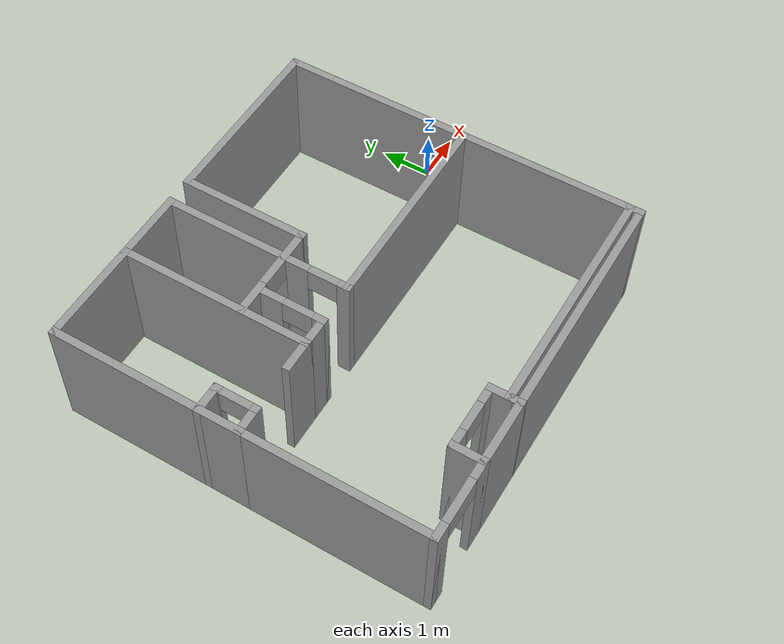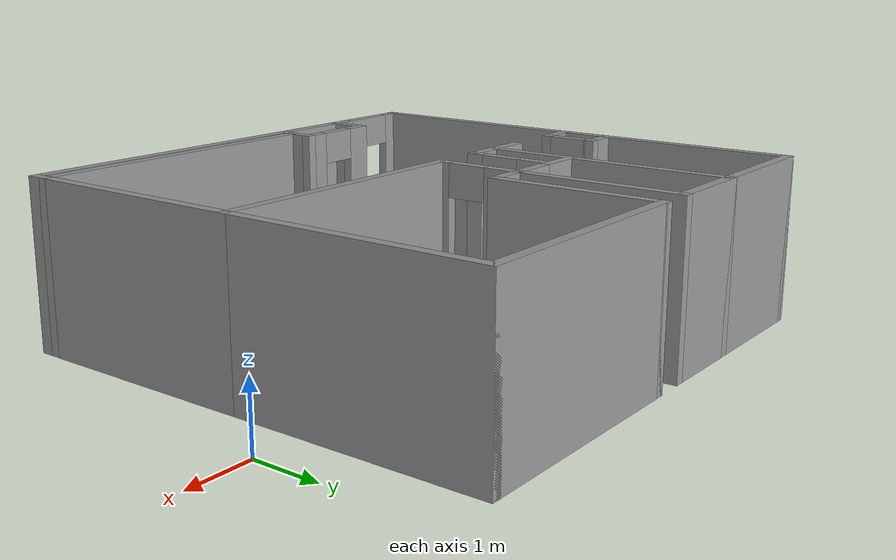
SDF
<?xml version='1.0'?>
<sdf version='1.6'>
  <model name='apartment'>
    <pose frame=''>-4.56462 -1.0605 0 0 -0 0</pose>
    <link name='Wall_11'>
      <pose frame=''>-3.27938 0.3285 0 0 -0 1.5708</pose>
      <visual name='Wall_11_Visual_0'>
        <pose frame=''>-0.389285 0 1.25 0 -0 0</pose>
        <geometry>
          <box>
            <size>0.161429 0.15 2.5</size>
          </box>
        </geometry>
        <material>
          <script>
            <uri>file://media/materials/scripts/gazebo.material</uri>
            <name>Gazebo/Grey</name>
          </script>
          <ambient>1 1 1 1</ambient>
        </material>
        <meta>
          <layer>0</layer>
        </meta>
      </visual>
      <collision name='Wall_11_Collision_0'>
        <geometry>
          <box>
            <size>0.161429 0.15 2.5</size>
          </box>
        </geometry>
        <pose frame=''>-0.389285 0 1.25 0 -0 0</pose>
      </collision>
      <visual name='Wall_11_Visual_1'>
        <pose frame=''>0.380715 0 1.25 0 -0 0</pose>
        <geometry>
          <box>
            <size>0.178571 0.15 2.5</size>
          </box>
        </geometry>
        <material>
          <script>
            <uri>file://media/materials/scripts/gazebo.material</uri>
            <name>Gazebo/Grey</name>
          </script>
          <ambient>1 1 1 1</ambient>
        </material>
        <meta>
          <layer>0</layer>
        </meta>
      </visual>
      <collision name='Wall_11_Collision_1'>
        <geometry>
          <box>
            <size>0.178571 0.15 2.5</size>
          </box>
        </geometry>
        <pose frame=''>0.380715 0 1.25 0 -0 0</pose>
      </collision>
      <visual name='Wall_11_Visual_2'>
        <pose frame=''>-0.008571 0 2.25 0 -0 0</pose>
        <geometry>
          <box>
            <size>0.6 0.15 0.5</size>
          </box>
        </geometry>
        <material>
          <script>
            <uri>file://media/materials/scripts/gazebo.material</uri>
            <name>Gazebo/Grey</name>
          </script>
          <ambient>1 1 1 1</ambient>
        </material>
        <meta>
          <layer>0</layer>
        </meta>
      </visual>
      <collision name='Wall_11_Collision_2'>
        <geometry>
          <box>
            <size>0.6 0.15 0.5</size>
          </box>
        </geometry>
        <pose frame=''>-0.008571 0 2.25 0 -0 0</pose>
      </collision>
    </link>
    <link name='Wall_13'>
      <collision name='Wall_13_Collision'>
        <geometry>
          <box>
            <size>0.635 0.15 2.5</size>
          </box>
        </geometry>
        <pose frame=''>0 0 1.25 0 -0 0</pose>
      </collision>
      <visual name='Wall_13_Visual'>
        <pose frame=''>0 0 1.25 0 -0 0</pose>
        <geometry>
          <box>
            <size>0.635 0.15 2.5</size>
          </box>
        </geometry>
        <material>
          <script>
            <uri>file://media/materials/scripts/gazebo.material</uri>
            <name>Gazebo/Grey</name>
          </script>
          <ambient>1 1 1 1</ambient>
        </material>
        <meta>
          <layer>0</layer>
        </meta>
      </visual>
      <pose frame=''>-3.52188 0.7235 0 0 -0 3.14159</pose>
    </link>
    <link name='Wall_16'>
      <collision name='Wall_16_Collision'>
        <geometry>
          <box>
            <size>3.124 0.15 2.5</size>
          </box>
        </geometry>
        <pose frame=''>0 0 1.25 0 -0 0</pose>
      </collision>
      <visual name='Wall_16_Visual'>
        <pose frame=''>0 0 1.25 0 -0 0</pose>
        <geometry>
          <box>
            <size>3.124 0.15 2.5</size>
          </box>
        </geometry>
        <material>
          <script>
            <uri>file://media/materials/scripts/gazebo.material</uri>
            <name>Gazebo/Grey</name>
          </script>
          <ambient>1 1 1 1</ambient>
        </material>
        <meta>
          <layer>0</layer>
        </meta>
      </visual>
      <pose frame=''>-3.76438 2.2105 0 0 -0 1.5708</pose>
    </link>
    <link name='Wall_18'>
      <collision name='Wall_18_Collision'>
        <geometry>
          <box>
            <size>2.159 0.15 2.5</size>
          </box>
        </geometry>
        <pose frame=''>0 0 1.25 0 -0 0</pose>
      </collision>
      <visual name='Wall_18_Visual'>
        <pose frame=''>0 0 1.25 0 -0 0</pose>
        <geometry>
          <box>
            <size>2.159 0.15 2.5</size>
          </box>
        </geometry>
        <material>
          <script>
            <uri>file://media/materials/scripts/gazebo.material</uri>
            <name>Gazebo/Grey</name>
          </script>
          <ambient>1 1 1 1</ambient>
        </material>
        <meta>
          <layer>0</layer>
        </meta>
      </visual>
      <pose frame=''>-2.75988 3.6975 0 0 -0 0</pose>
    </link>
    <link name='Wall_20'>
      <collision name='Wall_20_Collision'>
        <geometry>
          <box>
            <size>3.914 0.15 2.5</size>
          </box>
        </geometry>
        <pose frame=''>0 0 1.25 0 -0 0</pose>
      </collision>
      <visual name='Wall_20_Visual'>
        <pose frame=''>0 0 1.25 0 -0 0</pose>
        <geometry>
          <box>
            <size>3.914 0.15 2.5</size>
          </box>
        </geometry>
        <material>
          <script>
            <uri>file://media/materials/scripts/gazebo.material</uri>
            <name>Gazebo/Grey</name>
          </script>
          <ambient>1 1 1 1</ambient>
        </material>
        <meta>
          <layer>0</layer>
        </meta>
      </visual>
      <pose frame=''>-1.75538 1.8155 0 0 0 -1.5708</pose>
    </link>
    <link name='Wall_25'>
      <collision name='Wall_25_Collision'>
        <geometry>
          <box>
            <size>0.711 0.15 2.5</size>
          </box>
        </geometry>
        <pose frame=''>0 0 1.25 0 -0 0</pose>
      </collision>
      <visual name='Wall_25_Visual'>
        <pose frame=''>0 0 1.25 0 -0 0</pose>
        <geometry>
          <box>
            <size>0.711 0.15 2.5</size>
          </box>
        </geometry>
        <material>
          <script>
            <uri>file://media/materials/scripts/gazebo.material</uri>
            <name>Gazebo/Grey</name>
          </script>
          <ambient>1 1 1 1</ambient>
        </material>
        <meta>
          <layer>0</layer>
        </meta>
      </visual>
      <pose frame=''>-2.03588 -0.0665 0 0 -0 3.14159</pose>
    </link>
    <link name='Wall_27'>
      <collision name='Wall_27_Collision'>
        <geometry>
          <box>
            <size>0.686 0.15 2.5</size>
          </box>
        </geometry>
        <pose frame=''>0 0 1.25 0 -0 0</pose>
      </collision>
      <visual name='Wall_27_Visual'>
        <pose frame=''>0 0 1.25 0 -0 0</pose>
        <geometry>
          <box>
            <size>0.686 0.15 2.5</size>
          </box>
        </geometry>
        <material>
          <script>
            <uri>file://media/materials/scripts/gazebo.material</uri>
            <name>Gazebo/Grey</name>
          </script>
          <ambient>1 1 1 1</ambient>
        </material>
        <meta>
          <layer>0</layer>
        </meta>
      </visual>
      <pose frame=''>-1.48738 -0.0665 0 0 -0 0</pose>
    </link>
    <link name='Wall_29'>
      <pose frame=''>-1.21938 0.519 0 0 -0 1.5708</pose>
      <visual name='Wall_29_Visual_0'>
        <pose frame=''>-0.530207 0 1.25 0 -0 0</pose>
        <geometry>
          <box>
            <size>0.260586 0.15 2.5</size>
          </box>
        </geometry>
        <material>
          <script>
            <uri>file://media/materials/scripts/gazebo.material</uri>
            <name>Gazebo/Grey</name>
          </script>
          <ambient>1 1 1 1</ambient>
        </material>
        <meta>
          <layer>0</layer>
        </meta>
      </visual>
      <collision name='Wall_29_Collision_0'>
        <geometry>
          <box>
            <size>0.260586 0.15 2.5</size>
          </box>
        </geometry>
        <pose frame=''>-0.530207 0 1.25 0 -0 0</pose>
      </collision>
      <visual name='Wall_29_Visual_1'>
        <pose frame=''>0.430293 0 1.25 0 -0 0</pose>
        <geometry>
          <box>
            <size>0.460414 0.15 2.5</size>
          </box>
        </geometry>
        <material>
          <script>
            <uri>file://media/materials/scripts/gazebo.material</uri>
            <name>Gazebo/Grey</name>
          </script>
          <ambient>1 1 1 1</ambient>
        </material>
        <meta>
          <layer>0</layer>
        </meta>
      </visual>
      <collision name='Wall_29_Collision_1'>
        <geometry>
          <box>
            <size>0.460414 0.15 2.5</size>
          </box>
        </geometry>
        <pose frame=''>0.430293 0 1.25 0 -0 0</pose>
      </collision>
      <visual name='Wall_29_Visual_2'>
        <pose frame=''>-0.099914 0 2.25 0 -0 0</pose>
        <geometry>
          <box>
            <size>0.6 0.15 0.5</size>
          </box>
        </geometry>
        <material>
          <script>
            <uri>file://media/materials/scripts/gazebo.material</uri>
            <name>Gazebo/Grey</name>
          </script>
          <ambient>1 1 1 1</ambient>
        </material>
        <meta>
          <layer>0</layer>
        </meta>
      </visual>
      <collision name='Wall_29_Collision_2'>
        <geometry>
          <box>
            <size>0.6 0.15 0.5</size>
          </box>
        </geometry>
        <pose frame=''>-0.099914 0 2.25 0 -0 0</pose>
      </collision>
    </link>
    <link name='Wall_33'>
      <collision name='Wall_33_Collision'>
        <geometry>
          <box>
            <size>0.94 0.15 2.5</size>
          </box>
        </geometry>
        <pose frame=''>0 0 1.25 0 -0 0</pose>
      </collision>
      <visual name='Wall_33_Visual'>
        <pose frame=''>0 0 1.25 0 -0 0</pose>
        <geometry>
          <box>
            <size>0.94 0.15 2.5</size>
          </box>
        </geometry>
        <material>
          <script>
            <uri>file://media/materials/scripts/gazebo.material</uri>
            <name>Gazebo/Grey</name>
          </script>
          <ambient>1 1 1 1</ambient>
        </material>
        <meta>
          <layer>0</layer>
        </meta>
      </visual>
      <pose frame=''>-3.76438 0.3285 0 0 0 -1.5708</pose>
    </link>
    <link name='Wall_35'>
      <collision name='Wall_35_Collision'>
        <geometry>
          <box>
            <size>1.5 0.15 2.5</size>
          </box>
        </geometry>
        <pose frame=''>0 0 1.25 0 -0 0</pose>
      </collision>
      <visual name='Wall_35_Visual'>
        <pose frame=''>0 0 1.25 0 -0 0</pose>
        <geometry>
          <box>
            <size>1.5 0.15 2.5</size>
          </box>
        </geometry>
        <material>
          <script>
            <uri>file://media/materials/scripts/gazebo.material</uri>
            <name>Gazebo/Grey</name>
          </script>
          <ambient>1 1 1 1</ambient>
        </material>
        <meta>
          <layer>0</layer>
        </meta>
      </visual>
      <pose frame=''>-1.08038 3.6975 0 0 -0 0</pose>
    </link>
    <link name='Wall_37'>
      <collision name='Wall_37_Collision'>
        <geometry>
          <box>
            <size>2.603 0.15 2.5</size>
          </box>
        </geometry>
        <pose frame=''>0 0 1.25 0 -0 0</pose>
      </collision>
      <visual name='Wall_37_Visual'>
        <pose frame=''>0 0 1.25 0 -0 0</pose>
        <geometry>
          <box>
            <size>2.603 0.15 2.5</size>
          </box>
        </geometry>
        <material>
          <script>
            <uri>file://media/materials/scripts/gazebo.material</uri>
            <name>Gazebo/Grey</name>
          </script>
          <ambient>1 1 1 1</ambient>
        </material>
        <meta>
          <layer>0</layer>
        </meta>
      </visual>
      <pose frame=''>-0.405382 2.471 0 0 0 -1.5708</pose>
    </link>
    <link name='Wall_39'>
      <pose frame=''>-1.08038 1.2445 0 0 -0 3.14159</pose>
      <visual name='Wall_39_Visual_0'>
        <pose frame=''>-0.678105 0 1.25 0 -0 0</pose>
        <geometry>
          <box>
            <size>0.143791 0.15 2.5</size>
          </box>
        </geometry>
        <material>
          <script>
            <uri>file://media/materials/scripts/gazebo.material</uri>
            <name>Gazebo/Grey</name>
          </script>
          <ambient>1 1 1 1</ambient>
        </material>
        <meta>
          <layer>0</layer>
        </meta>
      </visual>
      <collision name='Wall_39_Collision_0'>
        <geometry>
          <box>
            <size>0.143791 0.15 2.5</size>
          </box>
        </geometry>
        <pose frame=''>-0.678105 0 1.25 0 -0 0</pose>
      </collision>
      <visual name='Wall_39_Visual_1'>
        <pose frame=''>0.371895 0 1.25 0 -0 0</pose>
        <geometry>
          <box>
            <size>0.756209 0.15 2.5</size>
          </box>
        </geometry>
        <material>
          <script>
            <uri>file://media/materials/scripts/gazebo.material</uri>
            <name>Gazebo/Grey</name>
          </script>
          <ambient>1 1 1 1</ambient>
        </material>
        <meta>
          <layer>0</layer>
        </meta>
      </visual>
      <collision name='Wall_39_Collision_1'>
        <geometry>
          <box>
            <size>0.756209 0.15 2.5</size>
          </box>
        </geometry>
        <pose frame=''>0.371895 0 1.25 0 -0 0</pose>
      </collision>
      <visual name='Wall_39_Visual_2'>
        <pose frame=''>-0.306209 0 2.25 0 -0 0</pose>
        <geometry>
          <box>
            <size>0.6 0.15 0.5</size>
          </box>
        </geometry>
        <material>
          <script>
            <uri>file://media/materials/scripts/gazebo.material</uri>
            <name>Gazebo/Grey</name>
          </script>
          <ambient>1 1 1 1</ambient>
        </material>
        <meta>
          <layer>0</layer>
        </meta>
      </visual>
      <collision name='Wall_39_Collision_2'>
        <geometry>
          <box>
            <size>0.6 0.15 0.5</size>
          </box>
        </geometry>
        <pose frame=''>-0.306209 0 2.25 0 -0 0</pose>
      </collision>
    </link>
    <link name='Wall_41'>
      <collision name='Wall_41_Collision'>
        <geometry>
          <box>
            <size>0.711 0.15 2.5</size>
          </box>
        </geometry>
        <pose frame=''>0 0 1.25 0 -0 0</pose>
      </collision>
      <visual name='Wall_41_Visual'>
        <pose frame=''>0 0 1.25 0 -0 0</pose>
        <geometry>
          <box>
            <size>0.711 0.15 2.5</size>
          </box>
        </geometry>
        <material>
          <script>
            <uri>file://media/materials/scripts/gazebo.material</uri>
            <name>Gazebo/Grey</name>
          </script>
          <ambient>1 1 1 1</ambient>
        </material>
        <meta>
          <layer>0</layer>
        </meta>
      </visual>
      <pose frame=''>-0.124883 1.2445 0 0 -0 0</pose>
    </link>
    <link name='Wall_43'>
      <collision name='Wall_43_Collision'>
        <geometry>
          <box>
            <size>2.603 0.15 2.5</size>
          </box>
        </geometry>
        <pose frame=''>0 0 1.25 0 -0 0</pose>
      </collision>
      <visual name='Wall_43_Visual'>
        <pose frame=''>0 0 1.25 0 -0 0</pose>
        <geometry>
          <box>
            <size>2.603 0.15 2.5</size>
          </box>
        </geometry>
        <material>
          <script>
            <uri>file://media/materials/scripts/gazebo.material</uri>
            <name>Gazebo/Grey</name>
          </script>
          <ambient>1 1 1 1</ambient>
        </material>
        <meta>
          <layer>0</layer>
        </meta>
      </visual>
      <pose frame=''>0.155617 2.471 0 0 -0 1.5708</pose>
    </link>
    <link name='Wall_45'>
      <collision name='Wall_45_Collision'>
        <geometry>
          <box>
            <size>3.759 0.15 2.5</size>
          </box>
        </geometry>
        <pose frame=''>0 0 1.25 0 -0 0</pose>
      </collision>
      <visual name='Wall_45_Visual'>
        <pose frame=''>0 0 1.25 0 -0 0</pose>
        <geometry>
          <box>
            <size>3.759 0.15 2.5</size>
          </box>
        </geometry>
        <material>
          <script>
            <uri>file://media/materials/scripts/gazebo.material</uri>
            <name>Gazebo/Grey</name>
          </script>
          <ambient>1 1 1 1</ambient>
        </material>
        <meta>
          <layer>0</layer>
        </meta>
      </visual>
      <pose frame=''>1.96012 3.6975 0 0 -0 0</pose>
    </link>
    <link name='Wall_47'>
      <collision name='Wall_47_Collision'>
        <geometry>
          <box>
            <size>3.914 0.15 2.5</size>
          </box>
        </geometry>
        <pose frame=''>0 0 1.25 0 -0 0</pose>
      </collision>
      <visual name='Wall_47_Visual'>
        <pose frame=''>0 0 1.25 0 -0 0</pose>
        <geometry>
          <box>
            <size>3.914 0.15 2.5</size>
          </box>
        </geometry>
        <material>
          <script>
            <uri>file://media/materials/scripts/gazebo.material</uri>
            <name>Gazebo/Grey</name>
          </script>
          <ambient>1 1 1 1</ambient>
        </material>
        <meta>
          <layer>0</layer>
        </meta>
      </visual>
      <pose frame=''>3.76462 1.8155 0 0 0 -1.5708</pose>
    </link>
    <link name='Wall_49'>
      <collision name='Wall_49_Collision'>
        <geometry>
          <box>
            <size>4.32 0.15 2.5</size>
          </box>
        </geometry>
        <pose frame=''>0 0 1.25 0 -0 0</pose>
      </collision>
      <visual name='Wall_49_Visual'>
        <pose frame=''>0 0 1.25 0 -0 0</pose>
        <geometry>
          <box>
            <size>4.32 0.15 2.5</size>
          </box>
        </geometry>
        <material>
          <script>
            <uri>file://media/materials/scripts/gazebo.material</uri>
            <name>Gazebo/Grey</name>
          </script>
          <ambient>1 1 1 1</ambient>
        </material>
        <meta>
          <layer>0</layer>
        </meta>
      </visual>
      <pose frame=''>1.67962 -0.0665 0 0 -0 3.14159</pose>
    </link>
    <link name='Wall_5'>
      <collision name='Wall_5_Collision'>
        <geometry>
          <box>
            <size>0.635 0.15 2.5</size>
          </box>
        </geometry>
        <pose frame=''>0 0 1.25 0 -0 0</pose>
      </collision>
      <visual name='Wall_5_Visual'>
        <pose frame=''>0 0 1.25 0 -0 0</pose>
        <geometry>
          <box>
            <size>0.635 0.15 2.5</size>
          </box>
        </geometry>
        <material>
          <script>
            <uri>file://media/materials/scripts/gazebo.material</uri>
            <name>Gazebo/Grey</name>
          </script>
          <ambient>1 1 1 1</ambient>
        </material>
        <meta>
          <layer>0</layer>
        </meta>
      </visual>
      <pose frame=''>-3.52188 -0.0665 0 0 -0 0</pose>
    </link>
    <link name='Wall_51'>
      <pose frame=''>-0.405382 0.589 0 0 0 -1.5708</pose>
      <visual name='Wall_51_Visual_0'>
        <pose frame=''>-0.430293 0 1.25 0 -0 0</pose>
        <geometry>
          <box>
            <size>0.600414 0.15 2.5</size>
          </box>
        </geometry>
        <material>
          <script>
            <uri>file://media/materials/scripts/gazebo.material</uri>
            <name>Gazebo/Grey</name>
          </script>
          <ambient>1 1 1 1</ambient>
        </material>
        <meta>
          <layer>0</layer>
        </meta>
      </visual>
      <collision name='Wall_51_Collision_0'>
        <geometry>
          <box>
            <size>0.600414 0.15 2.5</size>
          </box>
        </geometry>
        <pose frame=''>-0.430293 0 1.25 0 -0 0</pose>
      </collision>
      <visual name='Wall_51_Visual_1'>
        <pose frame=''>0.600207 0 1.25 0 -0 0</pose>
        <geometry>
          <box>
            <size>0.260586 0.15 2.5</size>
          </box>
        </geometry>
        <material>
          <script>
            <uri>file://media/materials/scripts/gazebo.material</uri>
            <name>Gazebo/Grey</name>
          </script>
          <ambient>1 1 1 1</ambient>
        </material>
        <meta>
          <layer>0</layer>
        </meta>
      </visual>
      <collision name='Wall_51_Collision_1'>
        <geometry>
          <box>
            <size>0.260586 0.15 2.5</size>
          </box>
        </geometry>
        <pose frame=''>0.600207 0 1.25 0 -0 0</pose>
      </collision>
      <visual name='Wall_51_Visual_2'>
        <pose frame=''>0.169914 0 2.25 0 -0 0</pose>
        <geometry>
          <box>
            <size>0.6 0.15 0.5</size>
          </box>
        </geometry>
        <material>
          <script>
            <uri>file://media/materials/scripts/gazebo.material</uri>
            <name>Gazebo/Grey</name>
          </script>
          <ambient>1 1 1 1</ambient>
        </material>
        <meta>
          <layer>0</layer>
        </meta>
      </visual>
      <collision name='Wall_51_Collision_2'>
        <geometry>
          <box>
            <size>0.6 0.15 0.5</size>
          </box>
        </geometry>
        <pose frame=''>0.169914 0 2.25 0 -0 0</pose>
      </collision>
    </link>
    <link name='Wall_53'>
      <collision name='Wall_53_Collision'>
        <geometry>
          <box>
            <size>3.578 0.15 2.5</size>
          </box>
        </geometry>
        <pose frame=''>0 0 1.25 0 -0 0</pose>
      </collision>
      <visual name='Wall_53_Visual'>
        <pose frame=''>0 0 1.25 0 -0 0</pose>
        <geometry>
          <box>
            <size>3.578 0.15 2.5</size>
          </box>
        </geometry>
        <material>
          <script>
            <uri>file://media/materials/scripts/gazebo.material</uri>
            <name>Gazebo/Grey</name>
          </script>
          <ambient>1 1 1 1</ambient>
        </material>
        <meta>
          <layer>0</layer>
        </meta>
      </visual>
      <pose frame=''>3.76462 -1.7805 0 0 0 -1.5708</pose>
    </link>
    <link name='Wall_55'>
      <collision name='Wall_55_Collision'>
        <geometry>
          <box>
            <size>3.781 0.15 2.5</size>
          </box>
        </geometry>
        <pose frame=''>0 0 1.25 0 -0 0</pose>
      </collision>
      <visual name='Wall_55_Visual'>
        <pose frame=''>0 0 1.25 0 -0 0</pose>
        <geometry>
          <box>
            <size>3.781 0.15 2.5</size>
          </box>
        </geometry>
        <material>
          <script>
            <uri>file://media/materials/scripts/gazebo.material</uri>
            <name>Gazebo/Grey</name>
          </script>
          <ambient>1 1 1 1</ambient>
        </material>
        <meta>
          <layer>0</layer>
        </meta>
      </visual>
      <pose frame=''>-3.76438 -1.882 0 0 0 -1.5708</pose>
    </link>
    <link name='Wall_57'>
      <pose frame=''>-2.98738 -3.6975 0 0 -0 0</pose>
      <visual name='Wall_57_Visual_0'>
        <pose frame=''>-0.667924 0 1.25 0 -0 0</pose>
        <geometry>
          <box>
            <size>0.368622 0.15 2.5</size>
          </box>
        </geometry>
        <material>
          <script>
            <uri>file://media/materials/scripts/gazebo.material</uri>
            <name>Gazebo/Grey</name>
          </script>
          <ambient>1 1 1 1</ambient>
        </material>
        <meta>
          <layer>0</layer>
        </meta>
      </visual>
      <collision name='Wall_57_Collision_0'>
        <geometry>
          <box>
            <size>0.368622 0.15 2.5</size>
          </box>
        </geometry>
        <pose frame=''>-0.667924 0 1.25 0 -0 0</pose>
      </collision>
      <visual name='Wall_57_Visual_1'>
        <pose frame=''>0.634311 0 1.25 0 -0 0</pose>
        <geometry>
          <box>
            <size>0.435848 0.15 2.5</size>
          </box>
        </geometry>
        <material>
          <script>
            <uri>file://media/materials/scripts/gazebo.material</uri>
            <name>Gazebo/Grey</name>
          </script>
          <ambient>1 1 1 1</ambient>
        </material>
        <meta>
          <layer>0</layer>
        </meta>
      </visual>
      <collision name='Wall_57_Collision_1'>
        <geometry>
          <box>
            <size>0.435848 0.15 2.5</size>
          </box>
        </geometry>
        <pose frame=''>0.634311 0 1.25 0 -0 0</pose>
      </collision>
      <visual name='Wall_57_Visual_2'>
        <pose frame=''>-0.033613 0 2.25 0 -0 0</pose>
        <geometry>
          <box>
            <size>0.9 0.15 0.5</size>
          </box>
        </geometry>
        <material>
          <script>
            <uri>file://media/materials/scripts/gazebo.material</uri>
            <name>Gazebo/Grey</name>
          </script>
          <ambient>1 1 1 1</ambient>
        </material>
        <meta>
          <layer>0</layer>
        </meta>
      </visual>
      <collision name='Wall_57_Collision_2'>
        <geometry>
          <box>
            <size>0.9 0.15 0.5</size>
          </box>
        </geometry>
        <pose frame=''>-0.033613 0 2.25 0 -0 0</pose>
      </collision>
    </link>
    <link name='Wall_59'>
      <collision name='Wall_59_Collision'>
        <geometry>
          <box>
            <size>0.711 0.15 2.5</size>
          </box>
        </geometry>
        <pose frame=''>0 0 1.25 0 -0 0</pose>
      </collision>
      <visual name='Wall_59_Visual'>
        <pose frame=''>0 0 1.25 0 -0 0</pose>
        <geometry>
          <box>
            <size>0.711 0.15 2.5</size>
          </box>
        </geometry>
        <material>
          <script>
            <uri>file://media/materials/scripts/gazebo.material</uri>
            <name>Gazebo/Grey</name>
          </script>
          <ambient>1 1 1 1</ambient>
        </material>
        <meta>
          <layer>0</layer>
        </meta>
      </visual>
      <pose frame=''>-2.21038 -3.417 0 0 -0 1.5708</pose>
    </link>
    <link name='Wall_61'>
      <pose frame=''>-1.57438 -3.1365 0 0 -0 0</pose>
      <visual name='Wall_61_Visual_0'>
        <pose frame=''>-0.503547 0 1.25 0 -0 0</pose>
        <geometry>
          <box>
            <size>0.414907 0.15 2.5</size>
          </box>
        </geometry>
        <material>
          <script>
            <uri>file://media/materials/scripts/gazebo.material</uri>
            <name>Gazebo/Grey</name>
          </script>
          <ambient>1 1 1 1</ambient>
        </material>
        <meta>
          <layer>0</layer>
        </meta>
      </visual>
      <collision name='Wall_61_Collision_0'>
        <geometry>
          <box>
            <size>0.414907 0.15 2.5</size>
          </box>
        </geometry>
        <pose frame=''>-0.503547 0 1.25 0 -0 0</pose>
      </collision>
      <visual name='Wall_61_Visual_1'>
        <pose frame=''>0.507453 0 1.25 0 -0 0</pose>
        <geometry>
          <box>
            <size>0.407093 0.15 2.5</size>
          </box>
        </geometry>
        <material>
          <script>
            <uri>file://media/materials/scripts/gazebo.material</uri>
            <name>Gazebo/Grey</name>
          </script>
          <ambient>1 1 1 1</ambient>
        </material>
        <meta>
          <layer>0</layer>
        </meta>
      </visual>
      <collision name='Wall_61_Collision_1'>
        <geometry>
          <box>
            <size>0.407093 0.15 2.5</size>
          </box>
        </geometry>
        <pose frame=''>0.507453 0 1.25 0 -0 0</pose>
      </collision>
      <visual name='Wall_61_Visual_2'>
        <pose frame=''>0.003907 0 2.25 0 -0 0</pose>
        <geometry>
          <box>
            <size>0.6 0.15 0.5</size>
          </box>
        </geometry>
        <material>
          <script>
            <uri>file://media/materials/scripts/gazebo.material</uri>
            <name>Gazebo/Grey</name>
          </script>
          <ambient>1 1 1 1</ambient>
        </material>
        <meta>
          <layer>0</layer>
        </meta>
      </visual>
      <collision name='Wall_61_Collision_2'>
        <geometry>
          <box>
            <size>0.6 0.15 0.5</size>
          </box>
        </geometry>
        <pose frame=''>0.003907 0 2.25 0 -0 0</pose>
      </collision>
    </link>
    <link name='Wall_63'>
      <collision name='Wall_63_Collision'>
        <geometry>
          <box>
            <size>0.508 0.15 2.5</size>
          </box>
        </geometry>
        <pose frame=''>0 0 1.25 0 -0 0</pose>
      </collision>
      <visual name='Wall_63_Visual'>
        <pose frame=''>0 0 1.25 0 -0 0</pose>
        <geometry>
          <box>
            <size>0.508 0.15 2.5</size>
          </box>
        </geometry>
        <material>
          <script>
            <uri>file://media/materials/scripts/gazebo.material</uri>
            <name>Gazebo/Grey</name>
          </script>
          <ambient>1 1 1 1</ambient>
        </material>
        <meta>
          <layer>0</layer>
        </meta>
      </visual>
      <pose frame=''>-0.938382 -3.3155 0 0 0 -1.5708</pose>
    </link>
    <link name='Wall_65'>
      <collision name='Wall_65_Collision'>
        <geometry>
          <box>
            <size>4.853 0.15 2.5</size>
          </box>
        </geometry>
        <pose frame=''>0 0 1.25 0 -0 0</pose>
      </collision>
      <visual name='Wall_65_Visual'>
        <pose frame=''>0 0 1.25 0 -0 0</pose>
        <geometry>
          <box>
            <size>4.853 0.15 2.5</size>
          </box>
        </geometry>
        <material>
          <script>
            <uri>file://media/materials/scripts/gazebo.material</uri>
            <name>Gazebo/Grey</name>
          </script>
          <ambient>1 1 1 1</ambient>
        </material>
        <meta>
          <layer>0</layer>
        </meta>
      </visual>
      <pose frame=''>1.41312 -3.4945 0 0 -0 3.14159</pose>
    </link>
    <link name='Wall_67'>
      <collision name='Wall_67_Collision'>
        <geometry>
          <box>
            <size>6.125 0.15 2.5</size>
          </box>
        </geometry>
        <pose frame=''>0 0 1.25 0 -0 0</pose>
      </collision>
      <visual name='Wall_67_Visual'>
        <pose frame=''>0 0 1.25 0 -0 0</pose>
        <geometry>
          <box>
            <size>6.125 0.15 2.5</size>
          </box>
        </geometry>
        <material>
          <script>
            <uri>file://media/materials/scripts/gazebo.material</uri>
            <name>Gazebo/Grey</name>
          </script>
          <ambient>1 1 1 1</ambient>
        </material>
        <meta>
          <layer>0</layer>
        </meta>
      </visual>
      <pose frame=''>0.777117 -3.6975 0 0 -0 0</pose>
    </link>
    <link name='Wall_69'>
      <collision name='Wall_69_Collision'>
        <geometry>
          <box>
            <size>0.353 0.15 2.5</size>
          </box>
        </geometry>
        <pose frame=''>0 0 1.25 0 -0 0</pose>
      </collision>
      <visual name='Wall_69_Visual'>
        <pose frame=''>0 0 1.25 0 -0 0</pose>
        <geometry>
          <box>
            <size>0.353 0.15 2.5</size>
          </box>
        </geometry>
        <material>
          <script>
            <uri>file://media/materials/scripts/gazebo.material</uri>
            <name>Gazebo/Grey</name>
          </script>
          <ambient>1 1 1 1</ambient>
        </material>
        <meta>
          <layer>0</layer>
        </meta>
      </visual>
      <pose frame=''>3.76462 -3.596 0 0 -0 1.5708</pose>
    </link>
    <link name='Wall_71'>
      <collision name='Wall_71_Collision'>
        <geometry>
          <box>
            <size>0.15 0.15 2.5</size>
          </box>
        </geometry>
        <pose frame=''>0 0 1.25 0 -0 0</pose>
      </collision>
      <visual name='Wall_71_Visual'>
        <pose frame=''>0 0 1.25 0 -0 0</pose>
        <geometry>
          <box>
            <size>0.15 0.15 2.5</size>
          </box>
        </geometry>
        <material>
          <script>
            <uri>file://media/materials/scripts/gazebo.material</uri>
            <name>Gazebo/Grey</name>
          </script>
          <ambient>1 1 1 1</ambient>
        </material>
        <meta>
          <layer>0</layer>
        </meta>
      </visual>
      <pose frame=''>-0.938382 -3.4945 0 0 -0 0</pose>
    </link>
    <link name='Wall_73'>
      <collision name='Wall_73_Collision'>
        <geometry>
          <box>
            <size>0.353 0.15 2.5</size>
          </box>
        </geometry>
        <pose frame=''>0 0 1.25 0 -0 0</pose>
      </collision>
      <visual name='Wall_73_Visual'>
        <pose frame=''>0 0 1.25 0 -0 0</pose>
        <geometry>
          <box>
            <size>0.353 0.15 2.5</size>
          </box>
        </geometry>
        <material>
          <script>
            <uri>file://media/materials/scripts/gazebo.material</uri>
            <name>Gazebo/Grey</name>
          </script>
          <ambient>1 1 1 1</ambient>
        </material>
        <meta>
          <layer>0</layer>
        </meta>
      </visual>
      <pose frame=''>-0.938382 -3.596 0 0 0 -1.5708</pose>
    </link>
    <static>1</static>
  </model>
</sdf>
